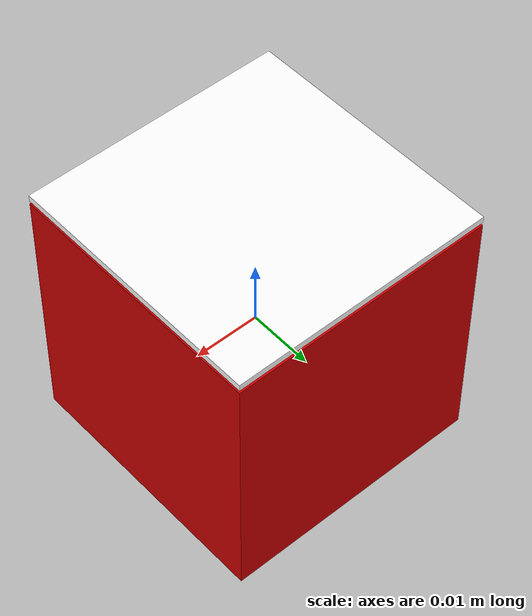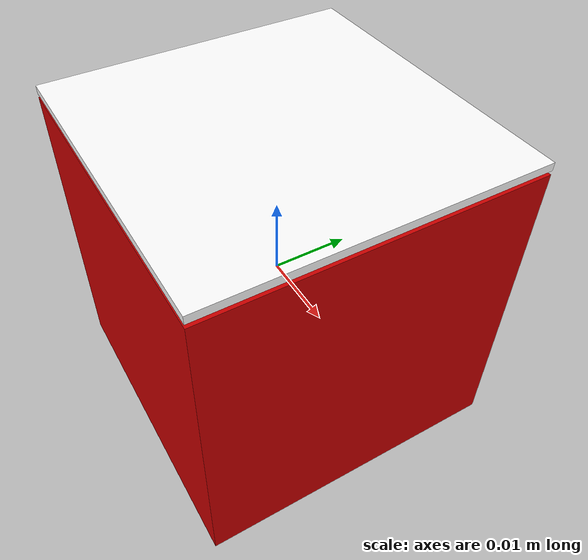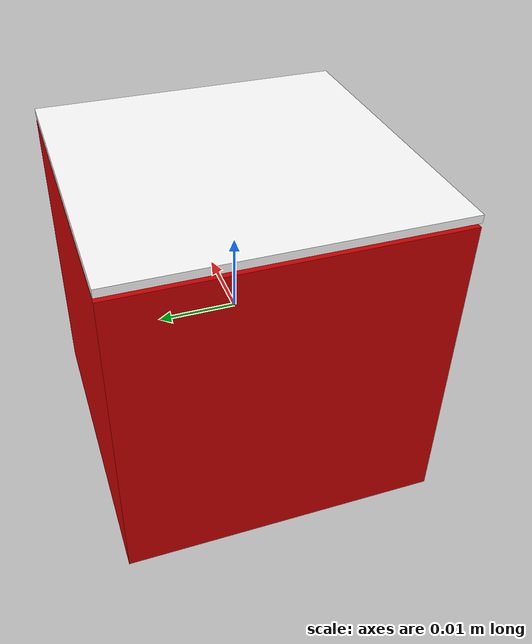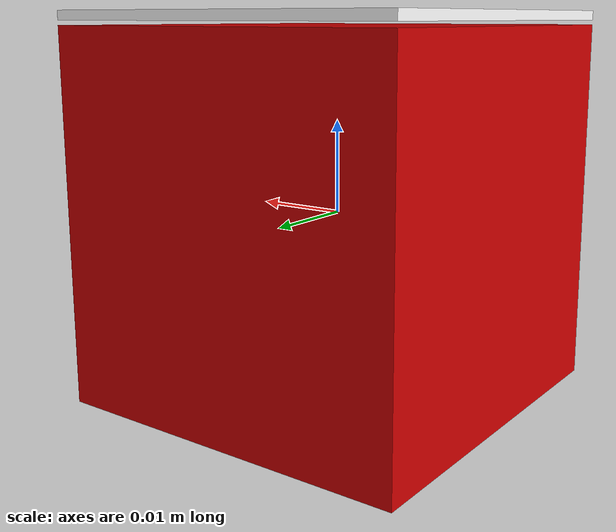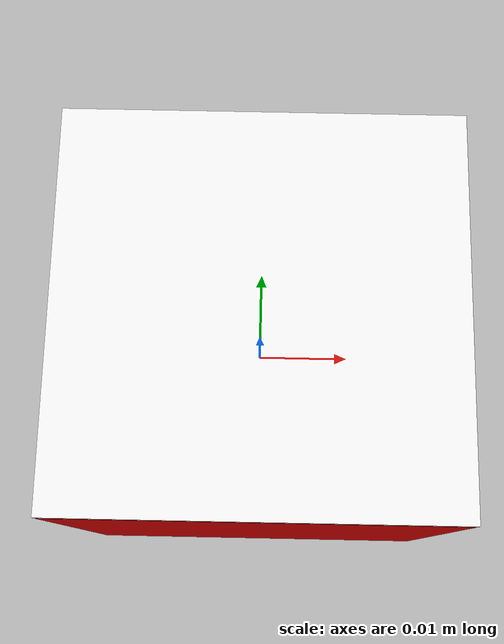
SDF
<?xml version="1.0" ?>
<sdf version="1.9">
  <model name="red_box_apriltag">
    <link name="link">
      <inertial>
        <mass>0.1</mass>
        <inertia>
          <ixx>0.0000267</ixx>
          <iyy>0.0000267</iyy>
          <izz>0.0000267</izz>
        </inertia>
      </inertial>

      <collision name="collision">
        <geometry>
          <box><size>0.04 0.04 0.04</size></box>
        </geometry>
      </collision>

      <!-- Red box body -->
      <visual name="box_visual">
        <geometry>
          <box><size>0.04 0.04 0.04</size></box>
        </geometry>
        <material>
          <ambient>0.8 0.0 0.0 1</ambient>
          <diffuse>0.8 0.0 0.0 1</diffuse>
        </material>
      </visual>

      <!-- AprilTag on top face (thin plane sitting on top of the box) -->
      <visual name="apriltag_visual">
        <pose>0 0 0.021 0 0 0</pose>
        <geometry>
          <box><size>0.04 0.04 0.001</size></box>
        </geometry>
        <material>
          <ambient>1 1 1 1</ambient>
          <diffuse>1 1 1 1</diffuse>
          <pbr>
            <metal>
              <albedo_map>model://red_box_apriltag/materials/textures/tag36h11_id0.png</albedo_map>
              <metalness>0.0</metalness>
              <roughness>0.9</roughness>
            </metal>
          </pbr>
        </material>
      </visual>
    </link>
  </model>
</sdf>
